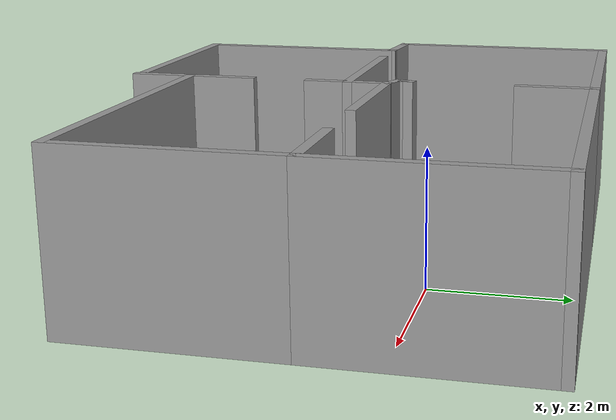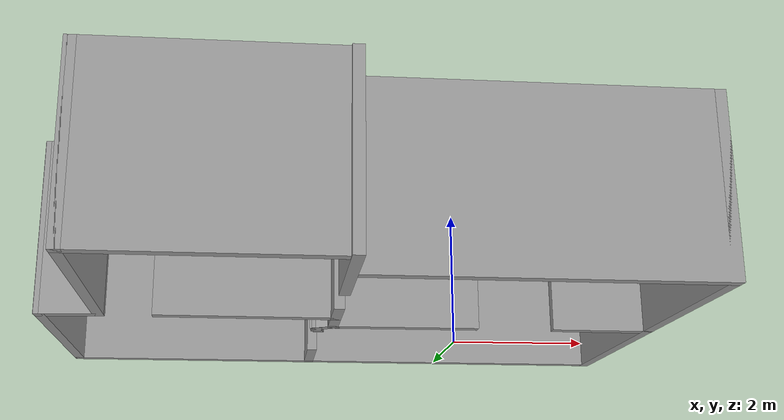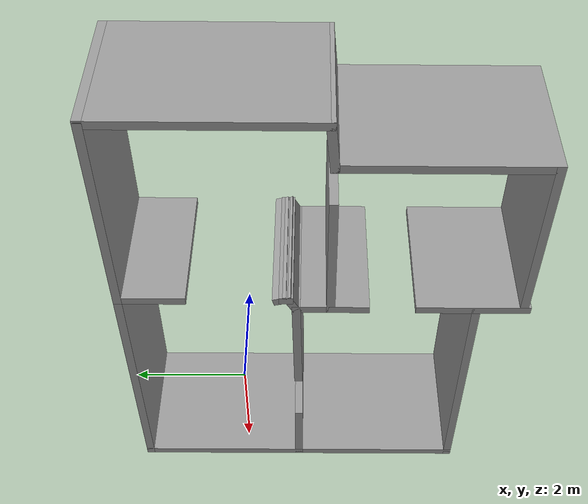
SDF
<?xml version='1.0'?>
<sdf version='1.6'>
  <model name='model_v1'>
    <pose frame=''>-1.65313 -1.445 0 0 -0 0</pose>
    <link name='Wall_23'>
      <collision name='Wall_23_Collision'>
        <geometry>
          <box>
            <size>2.6 0.15 2.5</size>
          </box>
        </geometry>
        <pose frame=''>0 0 1.25 0 -0 0</pose>
      </collision>
      <visual name='Wall_23_Visual'>
        <pose frame=''>0 0 1.25 0 -0 0</pose>
        <geometry>
          <box>
            <size>2.6 0.15 2.5</size>
          </box>
        </geometry>
        <material>
          <script>
            <uri>file://media/materials/scripts/gazebo.material</uri>
            <name>Gazebo/Grey</name>
          </script>
          <ambient>1 1 1 1</ambient>
        </material>
        <meta>
          <layer>0</layer>
        </meta>
      </visual>
      <pose frame=''>-1.51887 -0.135 0 0 -0 0</pose>
    </link>
    <link name='Wall_26'>
      <collision name='Wall_26_Collision'>
        <geometry>
          <box>
            <size>0.75 0.15 2.5</size>
          </box>
        </geometry>
        <pose frame=''>0 0 1.25 0 -0 0</pose>
      </collision>
      <visual name='Wall_26_Visual'>
        <pose frame=''>0 0 1.25 0 -0 0</pose>
        <geometry>
          <box>
            <size>0.75 0.15 2.5</size>
          </box>
        </geometry>
        <material>
          <script>
            <uri>file://media/materials/scripts/gazebo.material</uri>
            <name>Gazebo/Grey</name>
          </script>
          <ambient>1 1 1 1</ambient>
        </material>
        <meta>
          <layer>0</layer>
        </meta>
      </visual>
      <pose frame=''>-0.293874 -0.435 0 0 -0 -1.5708</pose>
    </link>
    <link name='Wall_31'>
      <collision name='Wall_31_Collision'>
        <geometry>
          <box>
            <size>3.25 0.15 2.5</size>
          </box>
        </geometry>
        <pose frame=''>0 0 1.25 0 -0 0</pose>
      </collision>
      <visual name='Wall_31_Visual'>
        <pose frame=''>0 0 1.25 0 -0 0</pose>
        <geometry>
          <box>
            <size>3.25 0.15 2.5</size>
          </box>
        </geometry>
        <material>
          <script>
            <uri>file://media/materials/scripts/gazebo.material</uri>
            <name>Gazebo/Grey</name>
          </script>
          <ambient>1 1 1 1</ambient>
        </material>
        <meta>
          <layer>0</layer>
        </meta>
      </visual>
      <pose frame=''>-1.99687 -3.485 0 0 -0 0</pose>
    </link>
    <link name='Wall_36'>
      <collision name='Wall_36_Collision'>
        <geometry>
          <box>
            <size>2 0.15 2.5</size>
          </box>
        </geometry>
        <pose frame=''>0 0 1.25 0 -0 0</pose>
      </collision>
      <visual name='Wall_36_Visual'>
        <pose frame=''>0 0 1.25 0 -0 0</pose>
        <geometry>
          <box>
            <size>2 0.15 2.5</size>
          </box>
        </geometry>
        <material>
          <script>
            <uri>file://media/materials/scripts/gazebo.material</uri>
            <name>Gazebo/Grey</name>
          </script>
          <ambient>1 1 1 1</ambient>
        </material>
        <meta>
          <layer>0</layer>
        </meta>
      </visual>
      <pose frame=''>-0.293874 -2.61 0 0 -0 -1.5708</pose>
    </link>
    <link name='Wall_38'>
      <collision name='Wall_38_Collision'>
        <geometry>
          <box>
            <size>4.75 0.15 2.5</size>
          </box>
        </geometry>
        <pose frame=''>0 0 1.25 0 -0 0</pose>
      </collision>
      <visual name='Wall_38_Visual'>
        <pose frame=''>0 0 1.25 0 -0 0</pose>
        <geometry>
          <box>
            <size>4.75 0.15 2.5</size>
          </box>
        </geometry>
        <material>
          <script>
            <uri>file://media/materials/scripts/gazebo.material</uri>
            <name>Gazebo/Grey</name>
          </script>
          <ambient>1 1 1 1</ambient>
        </material>
        <meta>
          <layer>0</layer>
        </meta>
      </visual>
      <pose frame=''>2.05313 -2.665 0 0 -0 0</pose>
    </link>
    <link name='Wall_39'>
      <collision name='Wall_39_Collision'>
        <geometry>
          <box>
            <size>3.25 0.15 2.5</size>
          </box>
        </geometry>
        <pose frame=''>0 0 1.25 0 -0 0</pose>
      </collision>
      <visual name='Wall_39_Visual'>
        <pose frame=''>0 0 1.25 0 -0 0</pose>
        <geometry>
          <box>
            <size>3.25 0.15 2.5</size>
          </box>
        </geometry>
        <material>
          <script>
            <uri>file://media/materials/scripts/gazebo.material</uri>
            <name>Gazebo/Grey</name>
          </script>
          <ambient>1 1 1 1</ambient>
        </material>
        <meta>
          <layer>0</layer>
        </meta>
      </visual>
      <pose frame=''>4.35313 -1.115 0 0 -0 1.5708</pose>
    </link>
    <link name='Wall_40'>
      <collision name='Wall_40_Collision'>
        <geometry>
          <box>
            <size>1.5 0.15 2.5</size>
          </box>
        </geometry>
        <pose frame=''>0 0 1.25 0 -0 0</pose>
      </collision>
      <visual name='Wall_40_Visual'>
        <pose frame=''>0 0 1.25 0 -0 0</pose>
        <geometry>
          <box>
            <size>1.5 0.15 2.5</size>
          </box>
        </geometry>
        <material>
          <script>
            <uri>file://media/materials/scripts/gazebo.material</uri>
            <name>Gazebo/Grey</name>
          </script>
          <ambient>1 1 1 1</ambient>
        </material>
        <meta>
          <layer>0</layer>
        </meta>
      </visual>
      <pose frame=''>3.67813 0.435 0 0 -0 3.14159</pose>
    </link>
    <link name='Wall_42'>
      <collision name='Wall_42_Collision'>
        <geometry>
          <box>
            <size>0.75 0.15 2.5</size>
          </box>
        </geometry>
        <pose frame=''>0 0 1.25 0 -0 0</pose>
      </collision>
      <visual name='Wall_42_Visual'>
        <pose frame=''>0 0 1.25 0 -0 0</pose>
        <geometry>
          <box>
            <size>0.75 0.15 2.5</size>
          </box>
        </geometry>
        <material>
          <script>
            <uri>file://media/materials/scripts/gazebo.material</uri>
            <name>Gazebo/Grey</name>
          </script>
          <ambient>1 1 1 1</ambient>
        </material>
        <meta>
          <layer>0</layer>
        </meta>
      </visual>
      <pose frame=''>-0.293874 0.165 0 0 -0 1.5708</pose>
    </link>
    <link name='Wall_46'>
      <collision name='Wall_46_Collision'>
        <geometry>
          <box>
            <size>2.19722 0.15 2.5</size>
          </box>
        </geometry>
        <pose frame=''>0 0 1.25 0 -0 0</pose>
      </collision>
      <visual name='Wall_46_Visual'>
        <pose frame=''>0 0 1.25 0 -0 0</pose>
        <geometry>
          <box>
            <size>2.19722 0.15 2.5</size>
          </box>
        </geometry>
        <material>
          <script>
            <uri>file://media/materials/scripts/gazebo.material</uri>
            <name>Gazebo/Grey</name>
          </script>
          <ambient>1 1 1 1</ambient>
        </material>
        <meta>
          <layer>0</layer>
        </meta>
      </visual>
      <pose frame=''>0.729626 0.45 0 0 -0 -0.014655</pose>
    </link>
    <link name='Wall_48'>
      <collision name='Wall_48_Collision'>
        <geometry>
          <box>
            <size>3.25 0.15 2.5</size>
          </box>
        </geometry>
        <pose frame=''>0 0 1.25 0 -0 0</pose>
      </collision>
      <visual name='Wall_48_Visual'>
        <pose frame=''>0 0 1.25 0 -0 0</pose>
        <geometry>
          <box>
            <size>3.25 0.15 2.5</size>
          </box>
        </geometry>
        <material>
          <script>
            <uri>file://media/materials/scripts/gazebo.material</uri>
            <name>Gazebo/Grey</name>
          </script>
          <ambient>1 1 1 1</ambient>
        </material>
        <meta>
          <layer>0</layer>
        </meta>
      </visual>
      <pose frame=''>4.35313 1.985 0 0 -0 1.5708</pose>
    </link>
    <link name='Wall_49'>
      <collision name='Wall_49_Collision'>
        <geometry>
          <box>
            <size>5 0.15 2.5</size>
          </box>
        </geometry>
        <pose frame=''>0 0 1.25 0 -0 0</pose>
      </collision>
      <visual name='Wall_49_Visual'>
        <pose frame=''>0 0 1.25 0 -0 0</pose>
        <geometry>
          <box>
            <size>5 0.15 2.5</size>
          </box>
        </geometry>
        <material>
          <script>
            <uri>file://media/materials/scripts/gazebo.material</uri>
            <name>Gazebo/Grey</name>
          </script>
          <ambient>1 1 1 1</ambient>
        </material>
        <meta>
          <layer>0</layer>
        </meta>
      </visual>
      <pose frame=''>1.92813 3.535 0 0 -0 3.14159</pose>
    </link>
    <link name='Wall_50'>
      <collision name='Wall_50_Collision'>
        <geometry>
          <box>
            <size>1.25 0.15 2.5</size>
          </box>
        </geometry>
        <pose frame=''>0 0 1.25 0 -0 0</pose>
      </collision>
      <visual name='Wall_50_Visual'>
        <pose frame=''>0 0 1.25 0 -0 0</pose>
        <geometry>
          <box>
            <size>1.25 0.15 2.5</size>
          </box>
        </geometry>
        <material>
          <script>
            <uri>file://media/materials/scripts/gazebo.material</uri>
            <name>Gazebo/Grey</name>
          </script>
          <ambient>1 1 1 1</ambient>
        </material>
        <meta>
          <layer>0</layer>
        </meta>
      </visual>
      <pose frame=''>-0.496874 2.985 0 0 -0 -1.5708</pose>
    </link>
    <link name='Wall_53'>
      <collision name='Wall_53_Collision'>
        <geometry>
          <box>
            <size>0.25 0.15 2.5</size>
          </box>
        </geometry>
        <pose frame=''>0 0 1.25 0 -0 0</pose>
      </collision>
      <visual name='Wall_53_Visual'>
        <pose frame=''>0 0 1.25 0 -0 0</pose>
        <geometry>
          <box>
            <size>0.25 0.15 2.5</size>
          </box>
        </geometry>
        <material>
          <script>
            <uri>file://media/materials/scripts/gazebo.material</uri>
            <name>Gazebo/Grey</name>
          </script>
          <ambient>1 1 1 1</ambient>
        </material>
        <meta>
          <layer>0</layer>
        </meta>
      </visual>
      <pose frame=''>-0.509815 0.736704 0 0 -0 -1.8326</pose>
    </link>
    <link name='Wall_54'>
      <collision name='Wall_54_Collision'>
        <geometry>
          <box>
            <size>0.25 0.15 2.5</size>
          </box>
        </geometry>
        <pose frame=''>0 0 1.25 0 -0 0</pose>
      </collision>
      <visual name='Wall_54_Visual'>
        <pose frame=''>0 0 1.25 0 -0 0</pose>
        <geometry>
          <box>
            <size>0.25 0.15 2.5</size>
          </box>
        </geometry>
        <material>
          <script>
            <uri>file://media/materials/scripts/gazebo.material</uri>
            <name>Gazebo/Grey</name>
          </script>
          <ambient>1 1 1 1</ambient>
        </material>
        <meta>
          <layer>0</layer>
        </meta>
      </visual>
      <pose frame=''>-0.522756 0.638407 0 0 -0 -1.5708</pose>
    </link>
    <link name='Wall_55'>
      <collision name='Wall_55_Collision'>
        <geometry>
          <box>
            <size>0.410031 0.15 2.5</size>
          </box>
        </geometry>
        <pose frame=''>0 0 1.25 0 -0 0</pose>
      </collision>
      <visual name='Wall_55_Visual'>
        <pose frame=''>0 0 1.25 0 -0 0</pose>
        <geometry>
          <box>
            <size>0.410031 0.15 2.5</size>
          </box>
        </geometry>
        <material>
          <script>
            <uri>file://media/materials/scripts/gazebo.material</uri>
            <name>Gazebo/Grey</name>
          </script>
          <ambient>1 1 1 1</ambient>
        </material>
        <meta>
          <layer>0</layer>
        </meta>
      </visual>
      <pose frame=''>-0.408315 0.526704 0 0 -0 -0.494494</pose>
    </link>
    <link name='Wall_57'>
      <collision name='Wall_57_Collision'>
        <geometry>
          <box>
            <size>4 0.15 2.5</size>
          </box>
        </geometry>
        <pose frame=''>0 0 1.25 0 -0 0</pose>
      </collision>
      <visual name='Wall_57_Visual'>
        <pose frame=''>0 0 1.25 0 -0 0</pose>
        <geometry>
          <box>
            <size>4 0.15 2.5</size>
          </box>
        </geometry>
        <material>
          <script>
            <uri>file://media/materials/scripts/gazebo.material</uri>
            <name>Gazebo/Grey</name>
          </script>
          <ambient>1 1 1 1</ambient>
        </material>
        <meta>
          <layer>0</layer>
        </meta>
      </visual>
      <pose frame=''>-2.42187 3.535 0 0 -0 3.14159</pose>
    </link>
    <link name='Wall_58'>
      <collision name='Wall_58_Collision'>
        <geometry>
          <box>
            <size>3.75 0.15 2.5</size>
          </box>
        </geometry>
        <pose frame=''>0 0 1.25 0 -0 0</pose>
      </collision>
      <visual name='Wall_58_Visual'>
        <pose frame=''>0 0 1.25 0 -0 0</pose>
        <geometry>
          <box>
            <size>3.75 0.15 2.5</size>
          </box>
        </geometry>
        <material>
          <script>
            <uri>file://media/materials/scripts/gazebo.material</uri>
            <name>Gazebo/Grey</name>
          </script>
          <ambient>1 1 1 1</ambient>
        </material>
        <meta>
          <layer>0</layer>
        </meta>
      </visual>
      <pose frame=''>-4.34687 1.735 0 0 -0 -1.5708</pose>
    </link>
    <link name='Wall_59'>
      <collision name='Wall_59_Collision'>
        <geometry>
          <box>
            <size>0.953057 0.15 2.5</size>
          </box>
        </geometry>
        <pose frame=''>0 0 1.25 0 -0 0</pose>
      </collision>
      <visual name='Wall_59_Visual'>
        <pose frame=''>0 0 1.25 0 -0 0</pose>
        <geometry>
          <box>
            <size>0.953057 0.15 2.5</size>
          </box>
        </geometry>
        <material>
          <script>
            <uri>file://media/materials/scripts/gazebo.material</uri>
            <name>Gazebo/Grey</name>
          </script>
          <ambient>1 1 1 1</ambient>
        </material>
        <meta>
          <layer>0</layer>
        </meta>
      </visual>
      <pose frame=''>-3.94687 -0.1 0 0 -0 -0.087278</pose>
    </link>
    <link name='Wall_7'>
      <collision name='Wall_7_Collision'>
        <geometry>
          <box>
            <size>3.5 0.15 2.5</size>
          </box>
        </geometry>
        <pose frame=''>0 0 1.25 0 -0 0</pose>
      </collision>
      <visual name='Wall_7_Visual'>
        <pose frame=''>0 0 1.25 0 -0 0</pose>
        <geometry>
          <box>
            <size>3.5 0.15 2.5</size>
          </box>
        </geometry>
        <material>
          <script>
            <uri>file://media/materials/scripts/gazebo.material</uri>
            <name>Gazebo/Grey</name>
          </script>
          <ambient>1 1 1 1</ambient>
        </material>
        <meta>
          <layer>0</layer>
        </meta>
      </visual>
      <pose frame=''>-3.54687 -1.81 0 0 -0 -1.5708</pose>
    </link>
    <static>1</static>
  </model>
</sdf>
